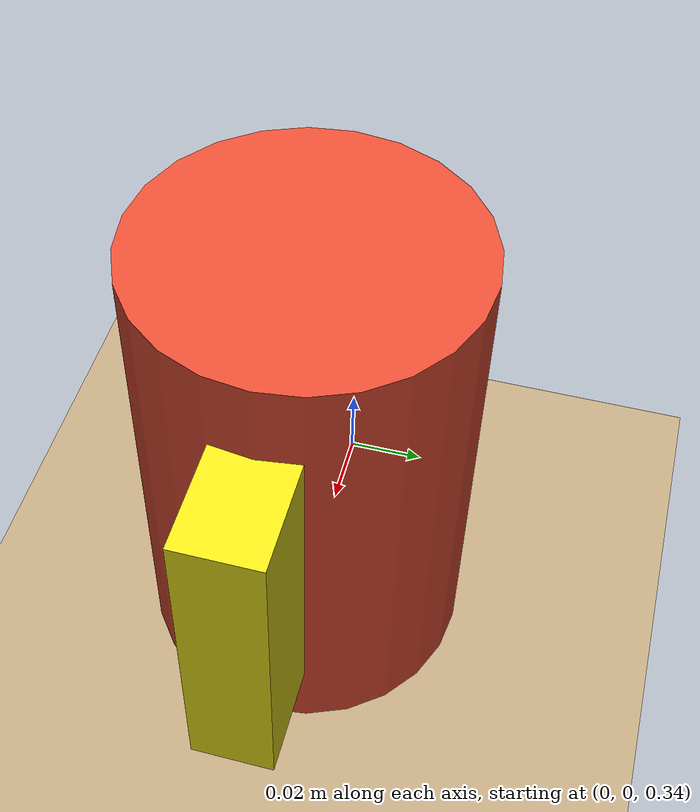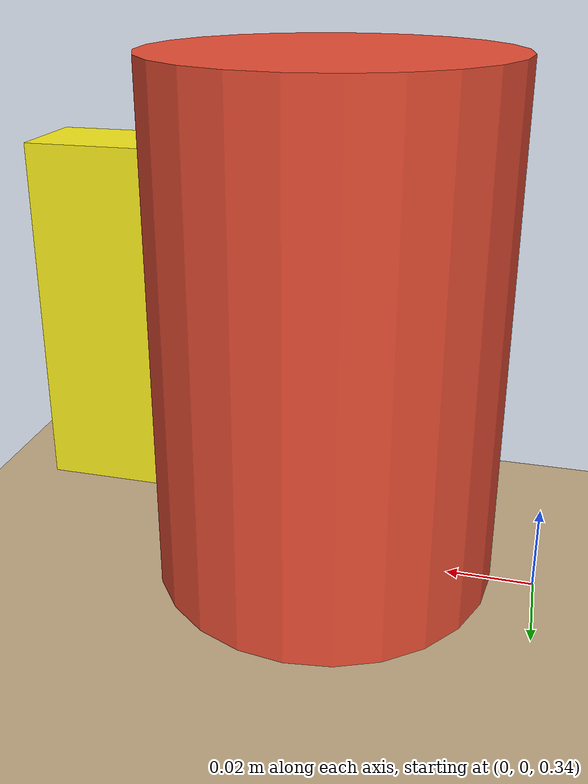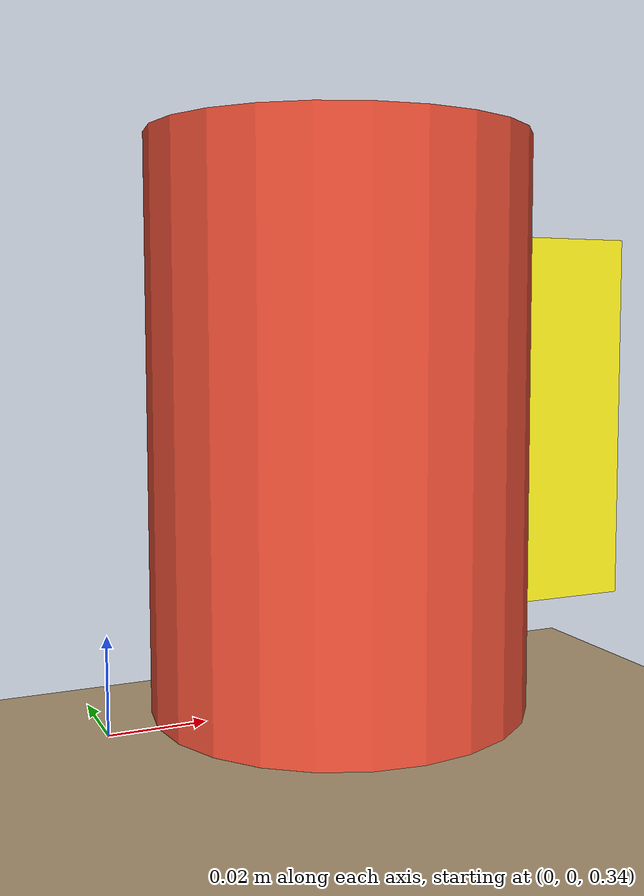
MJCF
<mujoco model="tabletop_scene">
  <option timestep="0.002" gravity="0 0 -9.81"/>

  <visual>
    <headlight ambient="0.4 0.4 0.4" diffuse="0.6 0.6 0.6" specular="0.1 0.1 0.1"/>
    <global offwidth="1024" offheight="1024"/>
  </visual>

  <asset>
    <material name="table_mat"  rgba="0.75 0.65 0.5 1"/>
    <material name="mug_mat"    rgba="0.9 0.3 0.2 1"/>
    <material name="handle_mat" rgba="0.95 0.9 0.1 1"/>
    <material name="floor_mat"  rgba="0.3 0.3 0.32 1"/>
  </asset>

  <worldbody>
    <light pos="0 0 2" dir="0 0 -1" diffuse="0.9 0.9 0.9"/>

    <!-- Floor -->
    <geom name="floor" type="plane" size="2 2 0.01" material="floor_mat"/>

    <!-- Table -->
    <body name="table" pos="0 0 0.30">
      <geom name="table_top" type="box" size="0.30 0.30 0.02" material="table_mat"/>
    </body>

    <!-- Object: mug-like cylinder with a handle -->
    <body name="mug" pos="0.05 0.00 0.40">
      <geom name="mug_body" type="cylinder" size="0.04 0.06" material="mug_mat"/>
      <geom name="mug_handle" type="box" pos="0.05 0.0 0.0" size="0.015 0.010 0.040" material="handle_mat"/>
    </body>

    <!-- Free-body camera; the adapter rewrites pose on each render. -->
    <camera name="render_cam" pos="0.4 0.4 0.6" xyaxes="1 0 0 0 0 1" fovy="60"/>
  </worldbody>
</mujoco>
